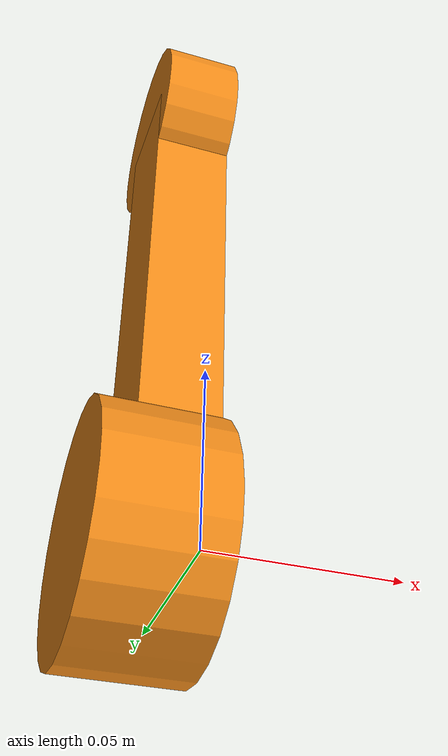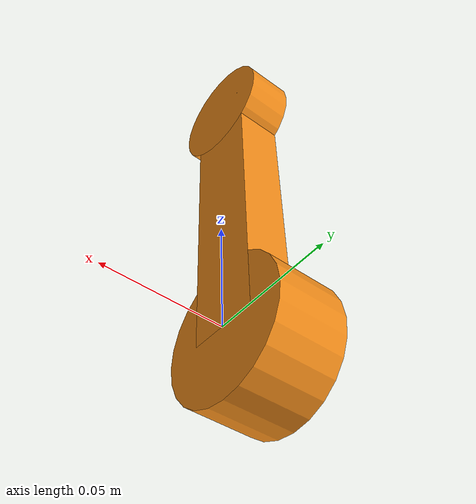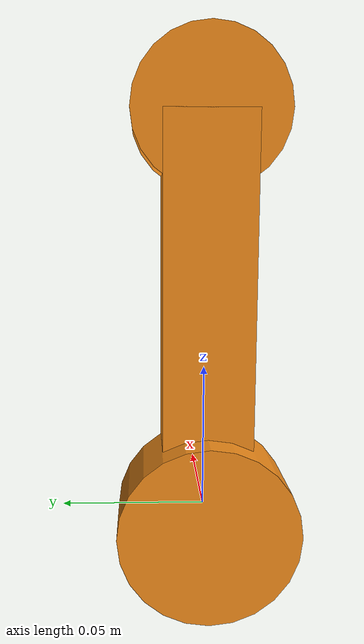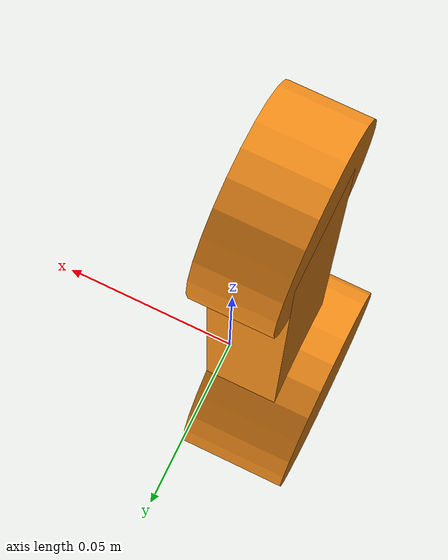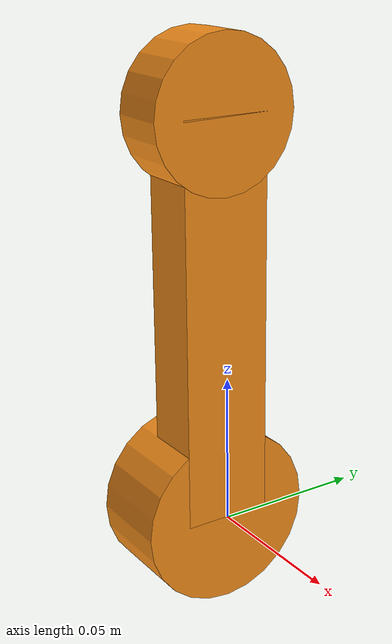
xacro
<?xml version="1.0"?>
<robot xmlns:xacro="http://www.ros.org/wiki/xacro">

  <link name="link3_part1">
    <visual>
      <geometry>
        <cylinder length="0.03" radius="0.03"/>
      </geometry>
      <origin xyz="-0.015 0 0" rpy="0 1.57075 0"/>
      <material name="orange"/>
    </visual>
  </link>

  <joint name="link3_fixed1" type="fixed">
    <parent link="link3_part1"/>
    <child link="link3_part2"/>
    <origin xyz="0 0 0" rpy="0 0 0"/>
  </joint>

  <link name="link3_part2">
    <visual>
      <geometry>
        <box size="0.02 0.03 0.13483"/>
      </geometry>
      <origin xyz="-0.01 0 0.067415" rpy="0 0 0"/>
      <material name="orange"/>
    </visual>
  </link>

  <joint name="link3_fixed2" type="fixed">
    <parent link="link3_part2"/>
    <child link="link3_part3"/>
    <origin xyz="0 0 0.13483" rpy="0 0 0"/>
  </joint>

  <link name="link3_part3">
    <visual>
      <geometry>
        <cylinder length="0.02" radius="0.025"/>
      </geometry>
      <origin xyz="-0.01 0 0" rpy="0 1.57075 0"/>
      <material name="orange"/>
    </visual>
  </link>
</robot>
